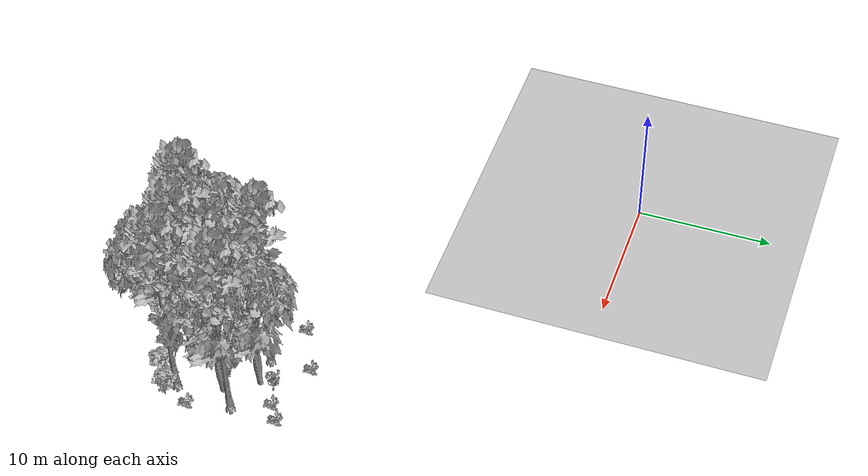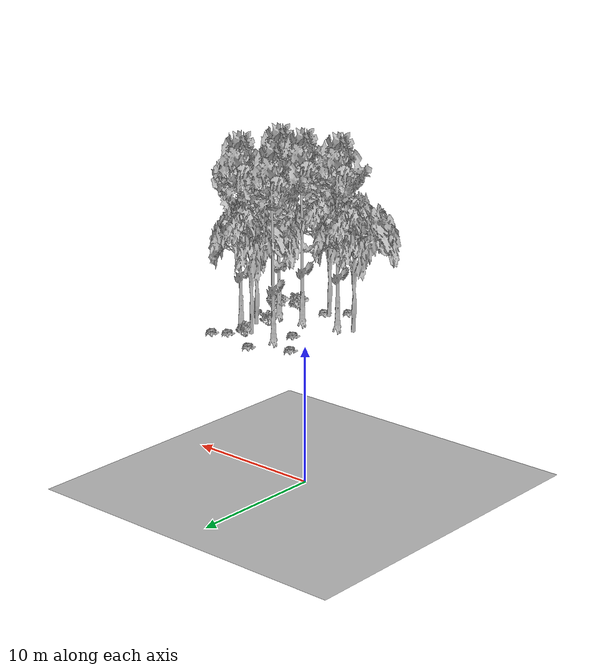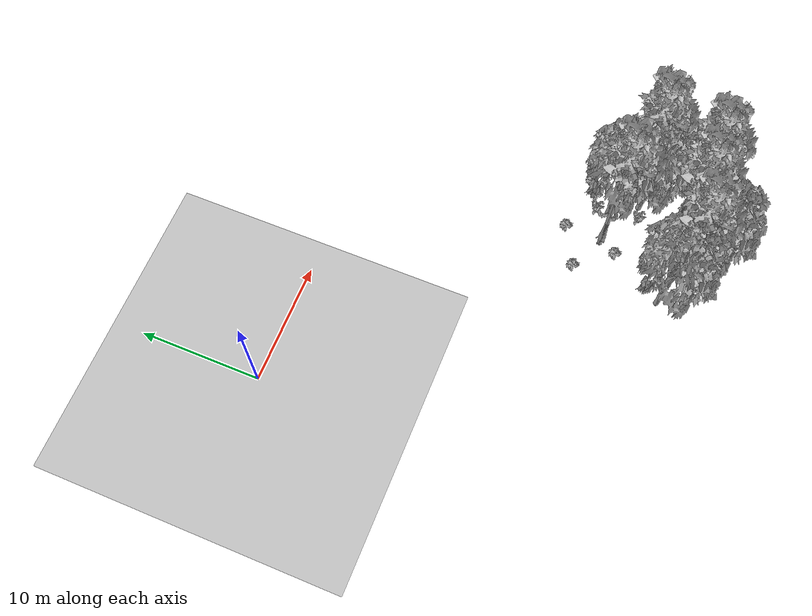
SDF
<sdf version="1.7">
 <world name="default">
  <model name="ground_plane">
   <static>1</static>
   <link name="link">
    <collision name="collision">
     <pose>-50 0 0 0 -0 0</pose>
     <geometry><plane><normal>0 0 1</normal><size>80 80</size></plane></geometry>
     <surface><contact><ode><min_depth>0.01</min_depth><max_vel>0</max_vel></ode></contact></surface>
    </collision>
    <visual name="grass">
     <cast_shadows>0</cast_shadows>
     <geometry>
      <mesh>
       <scale>0.46714285714285714 0.46714285714285714 0.1</scale>
       <uri>file://grass_plane/meshes/grass_plane.dae</uri>
      </mesh>
     </geometry>
    </visual>
   </link>
  </model>
  <model name="Tree 39">
   <static>1</static>
   <pose>19.83368202165989 -27.048400249393858 0 1.57079 -0 0</pose>
   <link name="link">
    <collision name="collision">
     <geometry><mesh><scale>3.5 5 3.5</scale><uri>model://tree_9/meshes/tree_9.obj</uri></mesh></geometry>
    </collision>
    <visual name="visual">
     <geometry><mesh><scale>3.5 5 3.5</scale><uri>model://tree_9/meshes/tree_9.obj</uri></mesh></geometry>
    </visual>
   </link>
  </model>
  <model name="Tree 50">
   <static>1</static>
   <pose>23.14054080778827 -26.210447821139667 0 1.57079 -0 0</pose>
   <link name="link">
    <collision name="collision">
     <geometry><mesh><scale>3.5 5 3.5</scale><uri>model://tree_9/meshes/tree_9.obj</uri></mesh></geometry>
    </collision>
    <visual name="visual">
     <geometry><mesh><scale>3.5 5 3.5</scale><uri>model://tree_9/meshes/tree_9.obj</uri></mesh></geometry>
    </visual>
   </link>
  </model>
  <model name="Tree 102">
   <static>1</static>
   <pose>21.893484453261713 -28.50594010362464 0 1.57079 -0 0</pose>
   <link name="link">
    <collision name="collision">
     <geometry><mesh><scale>3.5 5 3.5</scale><uri>model://tree_2/meshes/tree_2.obj</uri></mesh></geometry>
    </collision>
    <visual name="visual">
     <geometry><mesh><scale>3.5 5 3.5</scale><uri>model://tree_2/meshes/tree_2.obj</uri></mesh></geometry>
    </visual>
   </link>
  </model>
  <model name="Tree 170">
   <static>1</static>
   <pose>23.952762210308727 -20.64435952760259 0 1.57079 -0 0</pose>
   <link name="link">
    <collision name="collision">
     <geometry><mesh><scale>3.5 5 3.5</scale><uri>model://tree_2/meshes/tree_2.obj</uri></mesh></geometry>
    </collision>
    <visual name="visual">
     <geometry><mesh><scale>3.5 5 3.5</scale><uri>model://tree_2/meshes/tree_2.obj</uri></mesh></geometry>
    </visual>
   </link>
  </model>
  <model name="Tree 185">
   <static>1</static>
   <pose>21.722193930391562 -20.863544065694715 0 1.57079 -0 0</pose>
   <link name="link">
    <collision name="collision">
     <geometry><mesh><scale>3.5 5 3.5</scale><uri>model://tree_9/meshes/tree_9.obj</uri></mesh></geometry>
    </collision>
    <visual name="visual">
     <geometry><mesh><scale>3.5 5 3.5</scale><uri>model://tree_9/meshes/tree_9.obj</uri></mesh></geometry>
    </visual>
   </link>
  </model>
  <model name="Tree 214">
   <static>1</static>
   <pose>25.356395652881346 -22.83078408222332 0 1.57079 -0 0</pose>
   <link name="link">
    <collision name="collision">
     <geometry><mesh><scale>3.5 5 3.5</scale><uri>model://tree_2/meshes/tree_2.obj</uri></mesh></geometry>
    </collision>
    <visual name="visual">
     <geometry><mesh><scale>3.5 5 3.5</scale><uri>model://tree_2/meshes/tree_2.obj</uri></mesh></geometry>
    </visual>
   </link>
  </model>
  <model name="Tree 221">
   <static>1</static>
   <pose>17.645923327890813 -26.708863362359914 0 1.57079 -0 0</pose>
   <link name="link">
    <collision name="collision">
     <geometry><mesh><scale>3.5 5 3.5</scale><uri>model://tree_2/meshes/tree_2.obj</uri></mesh></geometry>
    </collision>
    <visual name="visual">
     <geometry><mesh><scale>3.5 5 3.5</scale><uri>model://tree_2/meshes/tree_2.obj</uri></mesh></geometry>
    </visual>
   </link>
  </model>
  <model name="Tree 410">
   <static>1</static>
   <pose>25.81724236927198 -26.17093226538057 0 1.57079 -0 0</pose>
   <link name="link">
    <collision name="collision">
     <geometry><mesh><scale>3.5 5 3.5</scale><uri>model://tree_9/meshes/tree_9.obj</uri></mesh></geometry>
    </collision>
    <visual name="visual">
     <geometry><mesh><scale>3.5 5 3.5</scale><uri>model://tree_9/meshes/tree_9.obj</uri></mesh></geometry>
    </visual>
   </link>
  </model>
  <model name="Tree 588">
   <static>1</static>
   <pose>26.407075733925993 -21.875943820975337 0 1.57079 -0 0</pose>
   <link name="link">
    <collision name="collision">
     <geometry><mesh><scale>3.5 5 3.5</scale><uri>model://tree_9/meshes/tree_9.obj</uri></mesh></geometry>
    </collision>
    <visual name="visual">
     <geometry><mesh><scale>3.5 5 3.5</scale><uri>model://tree_9/meshes/tree_9.obj</uri></mesh></geometry>
    </visual>
   </link>
  </model>
  <model name="Bush 36">
   <static>1</static>
   <pose>26.998574372315375 -26.487293966452512 0 1.57079 -0 0</pose>
   <link name="link">
    <collision name="collision">
     <geometry><mesh><scale>2 2 2</scale><uri>model://bush_5/meshes/bush_5.obj</uri></mesh></geometry>
     <surface><contact><collide_without_contact>false</collide_without_contact></contact></surface>
    </collision>
    <visual name="visual">
     <geometry><mesh><scale>2 2 2</scale><uri>model://bush_5/meshes/bush_5.obj</uri></mesh></geometry>
    </visual>
   </link>
  </model>
  <model name="Bush 69">
   <static>1</static>
   <pose>24.868586879575417 -27.861937679063587 0 1.57079 -0 0</pose>
   <link name="link">
    <collision name="collision">
     <geometry><mesh><scale>2 2 2</scale><uri>model://bush_1/meshes/bush_1.obj</uri></mesh></geometry>
     <surface><contact><collide_without_contact>false</collide_without_contact></contact></surface>
    </collision>
    <visual name="visual">
     <geometry><mesh><scale>2 2 2</scale><uri>model://bush_1/meshes/bush_1.obj</uri></mesh></geometry>
    </visual>
   </link>
  </model>
  <model name="Bush 94">
   <static>1</static>
   <pose>25.418442022001784 -19.210378292527047 0 1.57079 -0 0</pose>
   <link name="link">
    <collision name="collision">
     <geometry><mesh><scale>2 2 2</scale><uri>model://bush_2/meshes/bush_2.obj</uri></mesh></geometry>
     <surface><contact><collide_without_contact>false</collide_without_contact></contact></surface>
    </collision>
    <visual name="visual">
     <geometry><mesh><scale>2 2 2</scale><uri>model://bush_2/meshes/bush_2.obj</uri></mesh></geometry>
    </visual>
   </link>
  </model>
  <model name="Bush 103">
   <static>1</static>
   <pose>21.722228947805647 -17.7866998632869 0 1.57079 -0 0</pose>
   <link name="link">
    <collision name="collision">
     <geometry><mesh><scale>2 2 2</scale><uri>model://bush_2/meshes/bush_2.obj</uri></mesh></geometry>
     <surface><contact><collide_without_contact>false</collide_without_contact></contact></surface>
    </collision>
    <visual name="visual">
     <geometry><mesh><scale>2 2 2</scale><uri>model://bush_2/meshes/bush_2.obj</uri></mesh></geometry>
    </visual>
   </link>
  </model>
  <model name="Bush 155">
   <static>1</static>
   <pose>24.276783518130806 -23.119368293141935 0 1.57079 -0 0</pose>
   <link name="link">
    <collision name="collision">
     <geometry><mesh><scale>2 2 2</scale><uri>model://bush_4/meshes/bush_4.obj</uri></mesh></geometry>
     <surface><contact><collide_without_contact>false</collide_without_contact></contact></surface>
    </collision>
    <visual name="visual">
     <geometry><mesh><scale>2 2 2</scale><uri>model://bush_4/meshes/bush_4.obj</uri></mesh></geometry>
    </visual>
   </link>
  </model>
  <model name="Bush 275">
   <static>1</static>
   <pose>20.98070542909847 -30.080077417753657 0 1.57079 -0 0</pose>
   <link name="link">
    <collision name="collision">
     <geometry><mesh><scale>2 2 2</scale><uri>model://bush_2/meshes/bush_2.obj</uri></mesh></geometry>
     <surface><contact><collide_without_contact>false</collide_without_contact></contact></surface>
    </collision>
    <visual name="visual">
     <geometry><mesh><scale>2 2 2</scale><uri>model://bush_2/meshes/bush_2.obj</uri></mesh></geometry>
    </visual>
   </link>
  </model>
  <model name="Bush 295">
   <static>1</static>
   <pose>20.75554235716134 -22.309738880791635 0 1.57079 -0 0</pose>
   <link name="link">
    <collision name="collision">
     <geometry><mesh><scale>2 2 2</scale><uri>model://bush_2/meshes/bush_2.obj</uri></mesh></geometry>
     <surface><contact><collide_without_contact>false</collide_without_contact></contact></surface>
    </collision>
    <visual name="visual">
     <geometry><mesh><scale>2 2 2</scale><uri>model://bush_2/meshes/bush_2.obj</uri></mesh></geometry>
    </visual>
   </link>
  </model>
  <model name="Bush 357">
   <static>1</static>
   <pose>22.595474214031327 -28.682285355204222 0 1.57079 -0 0</pose>
   <link name="link">
    <collision name="collision">
     <geometry><mesh><scale>2 2 2</scale><uri>model://bush_2/meshes/bush_2.obj</uri></mesh></geometry>
     <surface><contact><collide_without_contact>false</collide_without_contact></contact></surface>
    </collision>
    <visual name="visual">
     <geometry><mesh><scale>2 2 2</scale><uri>model://bush_2/meshes/bush_2.obj</uri></mesh></geometry>
    </visual>
   </link>
  </model>
  <model name="Bush 383">
   <static>1</static>
   <pose>27.138162731812017 -24.849087631013447 0 1.57079 -0 0</pose>
   <link name="link">
    <collision name="collision">
     <geometry><mesh><scale>2 2 2</scale><uri>model://bush_2/meshes/bush_2.obj</uri></mesh></geometry>
     <surface><contact><collide_without_contact>false</collide_without_contact></contact></surface>
    </collision>
    <visual name="visual">
     <geometry><mesh><scale>2 2 2</scale><uri>model://bush_2/meshes/bush_2.obj</uri></mesh></geometry>
    </visual>
   </link>
  </model>
  <model name="Bush 479">
   <static>1</static>
   <pose>23.91103311682531 -19.677651672261717 0 1.57079 -0 0</pose>
   <link name="link">
    <collision name="collision">
     <geometry><mesh><scale>2 2 2</scale><uri>model://bush_4/meshes/bush_4.obj</uri></mesh></geometry>
     <surface><contact><collide_without_contact>false</collide_without_contact></contact></surface>
    </collision>
    <visual name="visual">
     <geometry><mesh><scale>2 2 2</scale><uri>model://bush_4/meshes/bush_4.obj</uri></mesh></geometry>
    </visual>
   </link>
  </model>
  <model name="Bush 519">
   <static>1</static>
   <pose>26.250422178818297 -26.765713666968516 0 1.57079 -0 0</pose>
   <link name="link">
    <collision name="collision">
     <geometry><mesh><scale>2 2 2</scale><uri>model://bush_1/meshes/bush_1.obj</uri></mesh></geometry>
     <surface><contact><collide_without_contact>false</collide_without_contact></contact></surface>
    </collision>
    <visual name="visual">
     <geometry><mesh><scale>2 2 2</scale><uri>model://bush_1/meshes/bush_1.obj</uri></mesh></geometry>
    </visual>
   </link>
  </model>
  <model name="Bush 588">
   <static>1</static>
   <pose>26.580513439909126 -18.43135500494477 0 1.57079 -0 0</pose>
   <link name="link">
    <collision name="collision">
     <geometry><mesh><scale>2 2 2</scale><uri>model://bush_2/meshes/bush_2.obj</uri></mesh></geometry>
     <surface><contact><collide_without_contact>false</collide_without_contact></contact></surface>
    </collision>
    <visual name="visual">
     <geometry><mesh><scale>2 2 2</scale><uri>model://bush_2/meshes/bush_2.obj</uri></mesh></geometry>
    </visual>
   </link>
  </model>
  <model name="Bush 609">
   <static>1</static>
   <pose>18.500937613424135 -19.437557980437134 0 1.57079 -0 0</pose>
   <link name="link">
    <collision name="collision">
     <geometry><mesh><scale>2 2 2</scale><uri>model://bush_2/meshes/bush_2.obj</uri></mesh></geometry>
     <surface><contact><collide_without_contact>false</collide_without_contact></contact></surface>
    </collision>
    <visual name="visual">
     <geometry><mesh><scale>2 2 2</scale><uri>model://bush_2/meshes/bush_2.obj</uri></mesh></geometry>
    </visual>
   </link>
  </model>
 </world>
</sdf>
